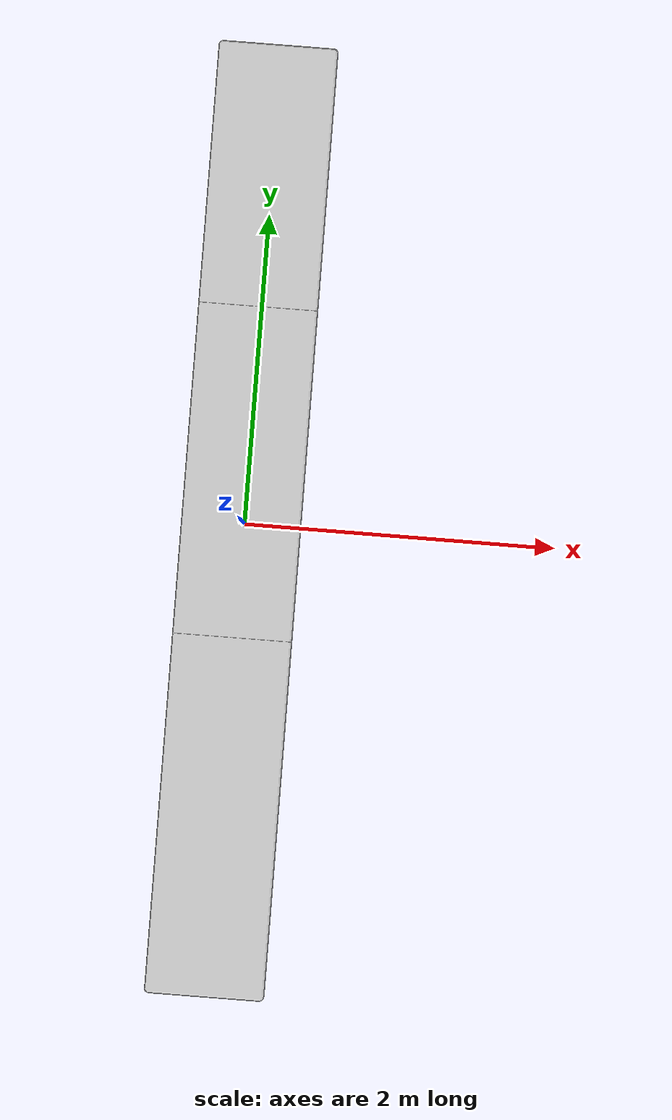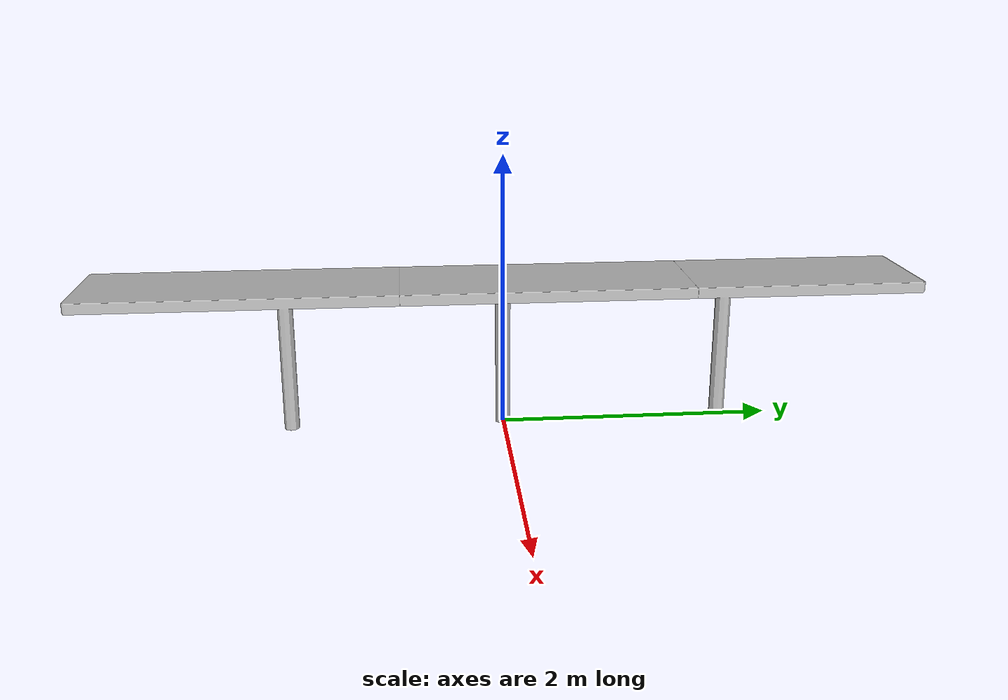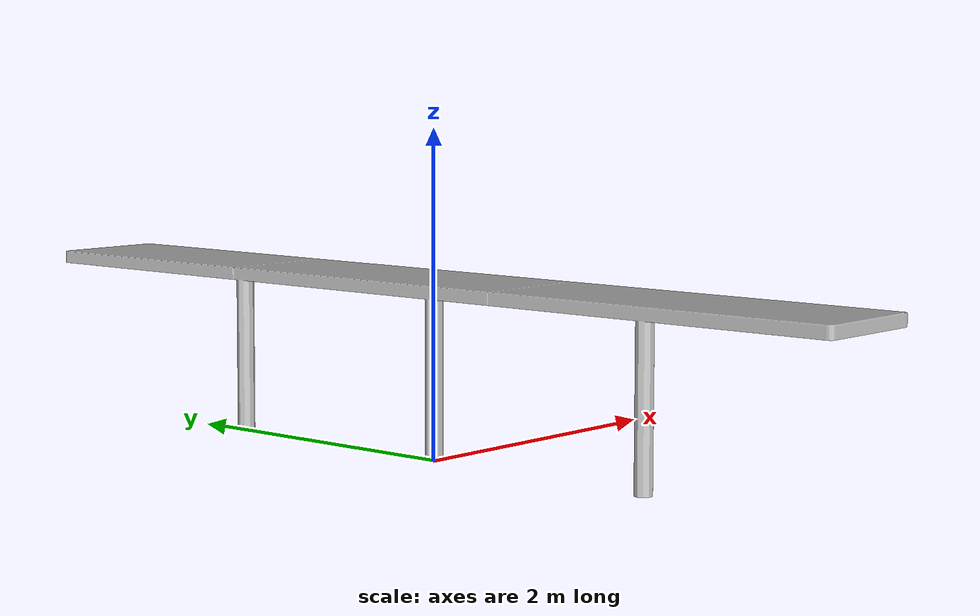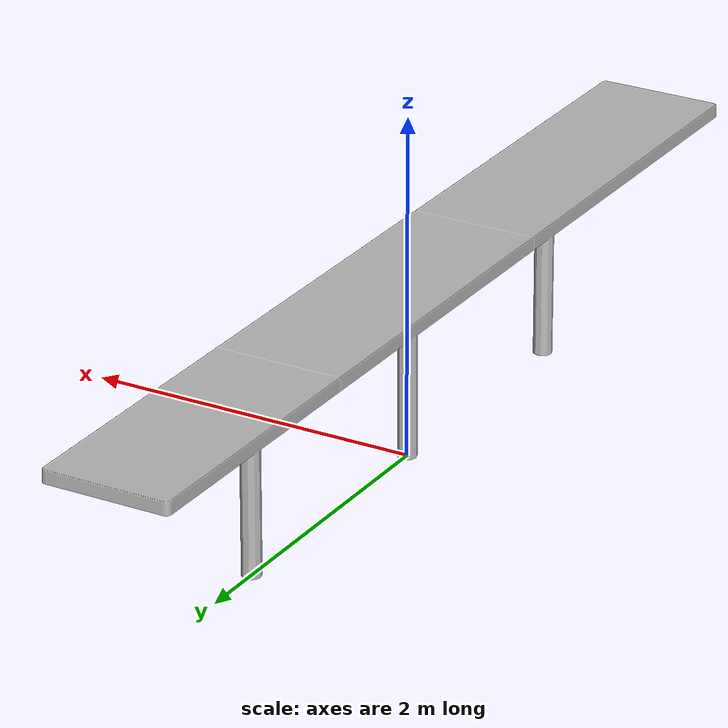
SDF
<?xml version="1.0" ?>
<sdf version="1.6">
  <model name="aws_robomaker_retail_DeskB_01">
    <link name="link">
      <inertial>
        <mass>50</mass>
        <inertia>
          <ixx>154.88378004</ixx>
          <ixy>0</ixy>
          <ixz>0</ixz>
          <iyy>7.484241145</iyy>
          <iyz>0</iyz>
          <izz>152.098671</izz>
        </inertia>
      </inertial>
      <collision name="collision">
        <geometry>
          <mesh>
            <uri>model://aws_robomaker_retail_DeskB_01/meshes/aws_DeskB_01_collision.DAE</uri>
            <scale>1 1 1</scale>
          </mesh>
        </geometry>
      </collision>
      <visual name="visual">
	    <geometry>
          <mesh>
            <uri>model://aws_robomaker_retail_DeskB_01/meshes/aws_DeskB_01_visual.DAE</uri>
          </mesh>
        </geometry>
        <meta>
          <layer>1</layer>
        </meta>
      </visual>
    </link>
    <static>1</static>
  </model>
</sdf>
